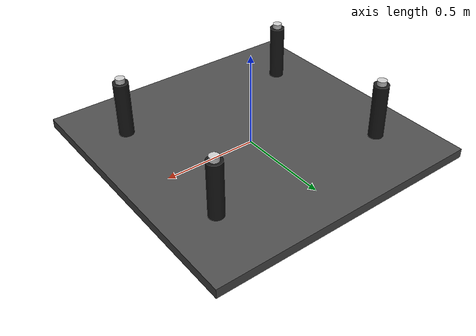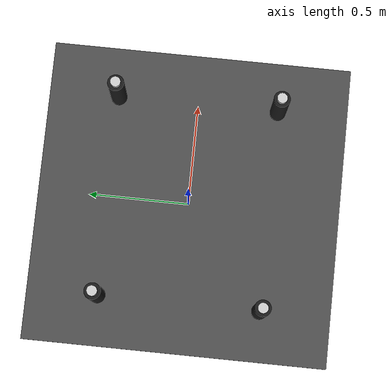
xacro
<?xml version="1.0"?>
<robot xmlns:xacro="http://www.ros.org/wiki/xacro" name="spatial_platform">

  <link name="world"/>

  <link name="dummy_z">
    <inertial><mass value="0.01"/><inertia ixx="0.0001" ixy="0" ixz="0" iyy="0.0001" iyz="0" izz="0.0001"/></inertial>
  </link>
  <link name="dummy_roll">
    <inertial><mass value="0.01"/><inertia ixx="0.0001" ixy="0" ixz="0" iyy="0.0001" iyz="0" izz="0.0001"/></inertial>
  </link>

  <joint name="translate_z" type="prismatic">
    <parent link="world"/>
    <child link="dummy_z"/>
    <origin xyz="0 0 0" rpy="0 0 0"/>
    <axis xyz="0 0 1"/>
    <limit lower="-1.0" upper="5.0" effort="100000" velocity="100"/>
  </joint>

  <joint name="rotate_roll" type="continuous">
    <parent link="dummy_z"/>
    <child link="dummy_roll"/>
    <origin xyz="0 0 0" rpy="0 0 0"/>
    <axis xyz="1 0 0"/>
  </joint>

  <joint name="rotate_pitch" type="continuous">
    <parent link="dummy_roll"/>
    <child link="platform"/>
    <origin xyz="0 0 0" rpy="0 0 0"/>
    <axis xyz="0 1 0"/>
  </joint>

  <link name="platform">
    <visual>
      <geometry><box size="1.0 0.8 0.05"/></geometry>
      <material name="cyan"><color rgba="0.0 1.0 1.0 1.0"/></material>
    </visual>
    <collision>
      <geometry><box size="1.0 0.8 0.05"/></geometry>
    </collision>
    <inertial>
      <mass value="12.0"/>
      <inertia ixx="2.5" ixy="0" ixz="0" iyy="3.2" iyz="0" izz="5.0"/>
    </inertial>
  </link>
  <gazebo reference="platform"><material>Gazebo/Turquoise</material></gazebo>

  <link name="base_link">
    <visual>
      <geometry><box size="1.5 1.5 0.05"/></geometry>
      <material name="gray"><color rgba="0.3 0.3 0.3 1.0"/></material>
    </visual>
    <collision>
      <geometry><box size="1.5 1.5 0.05"/></geometry>
    </collision>
    <inertial>
      <mass value="100.0"/>
      <inertia ixx="1.0" ixy="0" ixz="0" iyy="1.0" iyz="0" izz="1.0"/>
    </inertial>
  </link>
  <joint name="fixed_base" type="fixed">
    <parent link="world"/>
    <child link="base_link"/>
    <origin xyz="0 0 0.025" rpy="0 0 0"/>
  </joint>

  <xacro:macro name="suspension" params="prefix x y">

    <link name="${prefix}_cylinder">
      <visual>
        <origin xyz="0 0 0.15"/>
        <geometry><cylinder radius="0.04" length="0.30"/></geometry>
        <material name="black"><color rgba="0.1 0.1 0.1 1.0"/></material>
      </visual>
      <collision>
        <origin xyz="0 0 0.15"/>
        <geometry><cylinder radius="0.04" length="0.30"/></geometry>
      </collision>
      <inertial><mass value="1.0"/><inertia ixx="0.01" ixy="0" ixz="0" iyy="0.01" iyz="0" izz="0.005"/></inertial>
    </link>
    <gazebo reference="${prefix}_cylinder"><material>Gazebo/FlatBlack</material></gazebo>

    <joint name="${prefix}_base_joint" type="fixed">
      <parent link="base_link"/>
      <child link="${prefix}_cylinder"/>
      <origin xyz="${x} ${y} 0.025" rpy="0 0 0"/>
    </joint>

    <link name="${prefix}_piston">
      <visual>
        <origin xyz="0 0 0.15"/>
        <geometry><cylinder radius="0.025" length="0.35"/></geometry>
        <material name="silver"><color rgba="0.8 0.8 0.8 1.0"/></material>
      </visual>
      <inertial><mass value="0.1"/><inertia ixx="0.001" ixy="0" ixz="0" iyy="0.001" iyz="0" izz="0.001"/></inertial>
    </link>
    <gazebo reference="${prefix}_piston"><material>Gazebo/Silver</material></gazebo>

    <joint name="${prefix}_prismatic" type="prismatic">
      <parent link="${prefix}_cylinder"/>
      <child link="${prefix}_piston"/>
      <axis xyz="0 0 1"/>
      <limit lower="-0.1" upper="0.8" effort="200" velocity="10"/>
      <dynamics damping="5.0" friction="0.1"/>
    </joint>

    <gazebo reference="${prefix}_prismatic">
      <implicitSpringDamper>true</implicitSpringDamper>
      <springStiffness>10.0</springStiffness>
      <springReference>0.45</springReference>
    </gazebo>

  </xacro:macro>

  <xacro:suspension prefix="fl" x="0.5" y="0.4"/>
  <xacro:suspension prefix="fr" x="0.5" y="-0.4"/>
  <xacro:suspension prefix="rl" x="-0.5" y="0.4"/>
  <xacro:suspension prefix="rr" x="-0.5" y="-0.4"/>

  <gazebo>
    <plugin name="gazebo_ros_p3d" filename="libgazebo_ros_p3d.so">
      <ros><namespace>/platform</namespace><remapping>odom:=odom</remapping></ros>
      <body_name>platform</body_name>
      <frame_name>world</frame_name>
      <update_rate>100.0</update_rate>
    </plugin>
  </gazebo>

  <gazebo reference="platform">
    <sensor name="platform_imu" type="imu">
      <always_on>true</always_on>
      <update_rate>100.0</update_rate>
      <plugin name="gazebo_ros_imu_sensor" filename="libgazebo_ros_imu_sensor.so">
        <ros><namespace>/platform</namespace><remapping>~/out:=imu</remapping></ros>
      </plugin>
    </sensor>
  </gazebo>

  <gazebo>
    <plugin name="gazebo_ros_force" filename="libgazebo_ros_force.so">
      <ros><remapping>gazebo_ros_force:=/platform/cmd_wrench</remapping></ros>
      <link_name>platform</link_name>
      <force_frame>world</force_frame>
    </plugin>
  </gazebo>

</robot>
